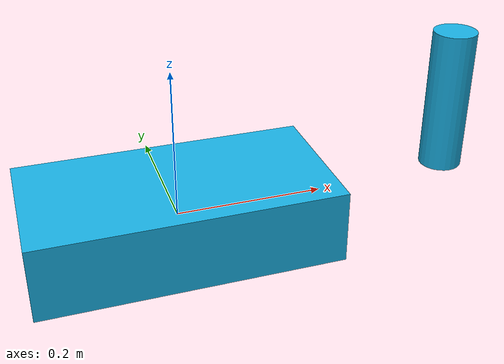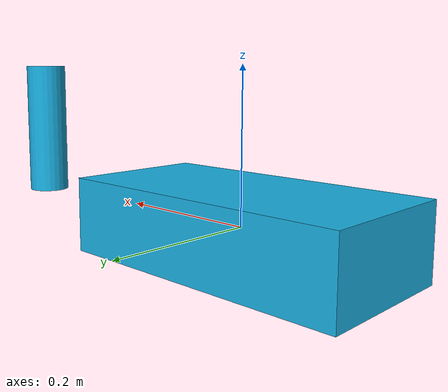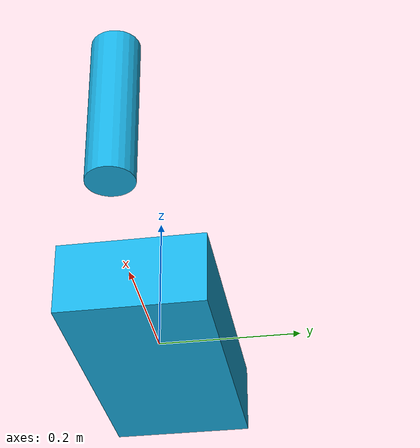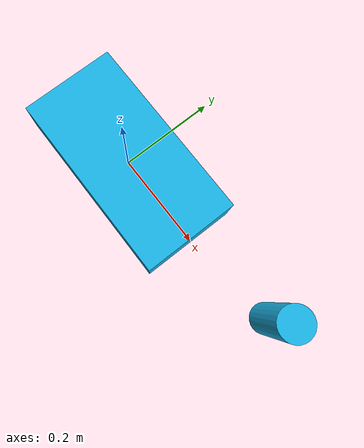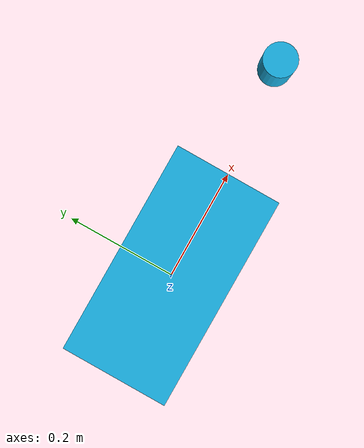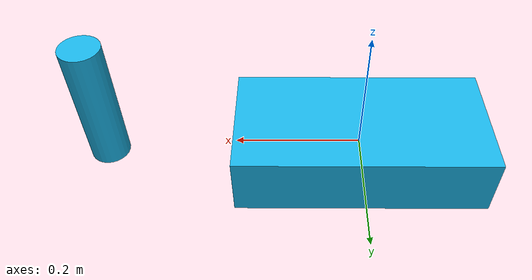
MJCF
<mujoco model="fixed_frame">
  <compiler angle="radian" inertiafromgeom="false"/>
  <worldbody>
    <body name="base">
      <inertial pos="0.1 0 0" quat="0.7071067811865476 0 0 0.7071067811865476"
                mass="2" diaginertia="0.02 0.03 0.04"/>
      <geom name="base_box" type="box" size="0.2 0.1 0.05"
            rgba="0.1 0.7 0.9 1" contype="0" conaffinity="0"/>
      <body name="arm" pos="0.4 0 0.1" quat="0.7071067811865476 0 0 0.7071067811865476">
        <inertial pos="0 0.1 0" mass="0.5" diaginertia="0.001 0.002 0.003"/>
        <geom name="arm_cylinder" type="cylinder" pos="0.02 0 0" size="0.03 0.1"
              rgba="0.1 0.7 0.9 1" contype="0" conaffinity="0"/>
      </body>
    </body>
  </worldbody>
</mujoco>
